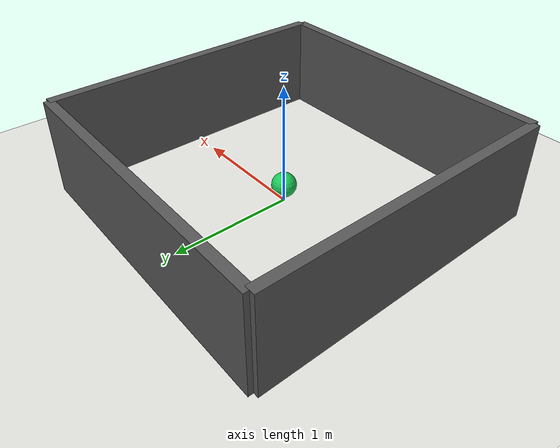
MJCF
<mujoco model="bouncing_ball">
  <option timestep="0.04" gravity="0 0 0"/>
  <visual><global offwidth="320" offheight="240"/></visual>
  <worldbody>
    <light pos="0 -4 5"/>
    <camera name="track" pos="0 -6 5" xyaxes="1 0 0 0 0.65 0.76"/>
    <geom name="floor" type="plane" size="3 3 0.1" rgba="0.9 0.9 0.88 1" condim="3"/>
    <geom name="wall_x_pos" type="box" pos="1.25 0 0.4" size="0.04 1.25 0.4" rgba="0.35 0.35 0.35 1"/>
    <geom name="wall_x_neg" type="box" pos="-1.25 0 0.4" size="0.04 1.25 0.4" rgba="0.35 0.35 0.35 1"/>
    <geom name="wall_y_pos" type="box" pos="0 1.25 0.4" size="1.25 0.04 0.4" rgba="0.35 0.35 0.35 1"/>
    <geom name="wall_y_neg" type="box" pos="0 -1.25 0.4" size="1.25 0.04 0.4" rgba="0.35 0.35 0.35 1"/>
    <body name="ball" pos="0 0 0.15">
      <freejoint name="ball_free"/>
      <geom name="ball_geom" type="sphere" size="0.1" mass="1" rgba="0.1 0.8 0.35 1"/>
    </body>
  </worldbody>
</mujoco>
